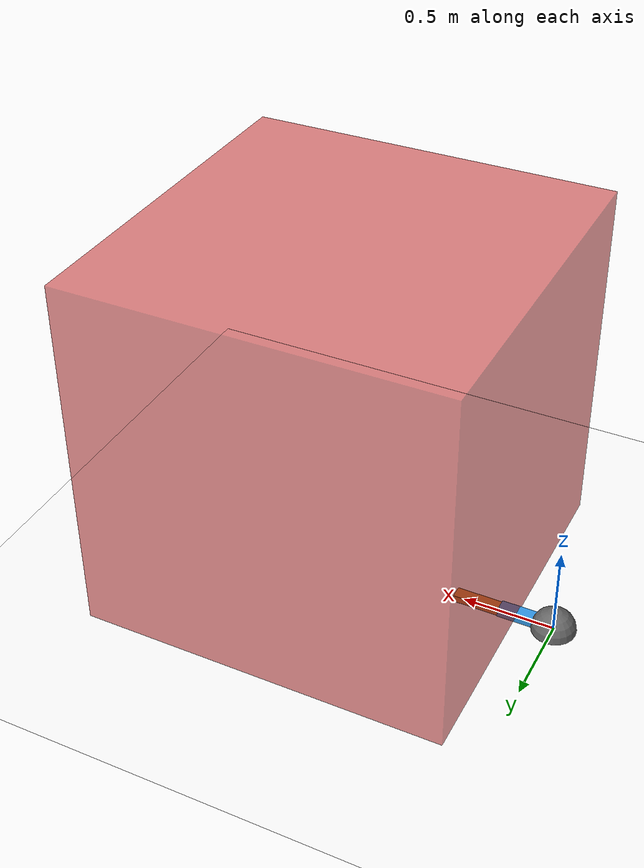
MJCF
<mujoco model="rrbot_arm_box">
  <asset>
    <texture name="skybox" type="skybox" builtin="gradient" rgb1=".2 .3 .4" rgb2="0 0 0" width="800" height="800" mark="random" markrgb="1 1 1" />
    <texture name="grid" type="2d" builtin="checker" rgb1=".2 .1 .2" rgb2=".3 .2 .3" width="300" height="300" mark="edge" markrgb=".3 .2 .3" />
    <material name="grid" texture="grid" texrepeat="1 1" texuniform="true" reflectance=".2" />
    <material name="self" rgba=".7 .5 .3 1" />
  </asset>
  <visual>
    <headlight ambient=".4 .4 .4" diffuse=".8 .8 .8" specular="0 0 0" />
    <map znear=".001" />
    <quality shadowsize="16384" />
  </visual>
  <compiler angle="degree" />
  <option integrator="RK4" timestep="0.01" />
  <default>
    <joint armature="1" damping="1" limited="true" />
    <geom conaffinity="0" condim="3" density="5.0" friction="1.0 0.5 0.5" margin="0.01" />
  </default>
  <worldbody>
    <light cutoff="100" diffuse="1 1 1" dir="0.3 0 -1.3" directional="true" exponent="1" pos="-30 0 130" specular=".1 .1 .1" />
    <geom conaffinity="1" condim="3" name="floor" pos="0 0 0" rgba="1 1 1 1" size="200 200 .125" type="plane" />
    <body name="0" pos="0 0 0">
      <camera name="track" mode="trackcom" pos="0 -3 0.3" xyaxes="1 0 0 0 0 1" />
      <geom pos="0 0 0" size="0.12" type="sphere" rgba=".4 .4 .4 1" />
      <!-- no free joint: fixed to world -->
      <body name="1" pos="0 0 0">
        <joint axis="0 0 1" name="1_joint" pos="0 0 0" range="-60 60" type="hinge" />
        <!-- physics capsule (invisible) -->
        <geom fromto="0 0 0 0.3 0 0" size="0.05" type="capsule" rgba="0 0 0 0" contype="1" conaffinity="1" />
        <!-- visual box (no collision) — pos/size updated by _sync_visual_geoms() -->
        <geom type="box" pos="0.15 0 0" size="0.15 0.04 0.04" rgba="0.2 0.6 0.9 1" contype="0" conaffinity="0" />
        <!-- body name "11" = reindex(1st child of "1") -->
        <body name="11" pos="0.3 0 0">
          <joint axis="0 0 1" name="11_joint" pos="0 0 0" range="-90 90" type="hinge" />
          <!-- physics capsule (invisible) -->
          <geom fromto="0 0 0 0.25 0 0" size="0.04" type="capsule" rgba="0 0 0 0" contype="1" conaffinity="1" />
          <!-- visual box (no collision) -->
          <geom type="box" pos="0.125 0 0" size="0.125 0.035 0.035" rgba="0.9 0.5 0.1 1" contype="0" conaffinity="0" />
        </body>
      </body>
    </body>
    <body name="cube" pos="0 0 0">
      <joint name="cube_slide" type="slide" axis="1 0 0" pos="1.2 0 1.02" damping="5.0" range="0  200" />
      <joint name="cube_slide2" type="slide" axis="0 1 0" pos="1.2 0 1.02" damping="5.0" range="-100  100" />
      <geom pos="1.2 0 1.02" name="cube_geom" type="box" size="1.0 1.0 1.0" rgba="0.8 0.2 0.2 0.6" friction="0 0 0" density="1" contype="1" conaffinity="1" />
    </body>
  </worldbody>
  <actuator>
    <motor ctrllimited="true" ctrlrange="-1.0 1.0" joint="1_joint" gear="150" name="1_joint" />
    <motor ctrllimited="true" ctrlrange="-1.0 1.0" joint="11_joint" gear="100" name="11_joint" />
  </actuator>
</mujoco>
